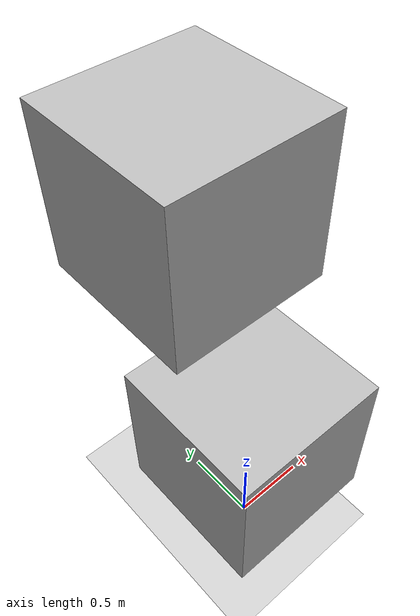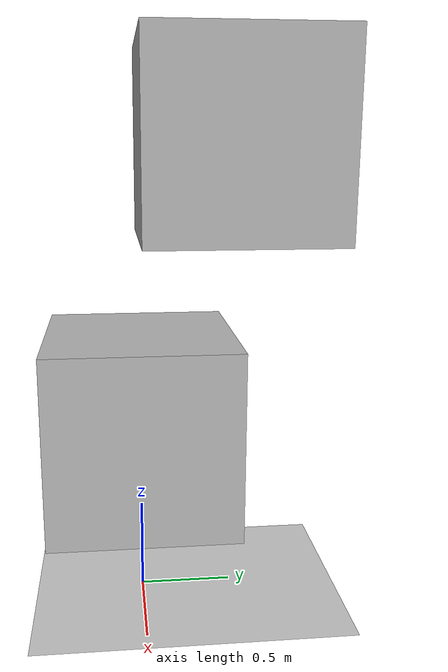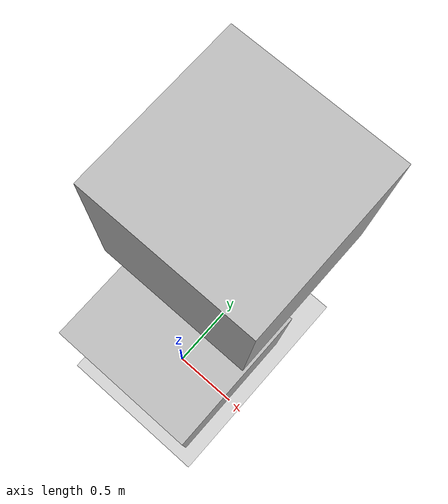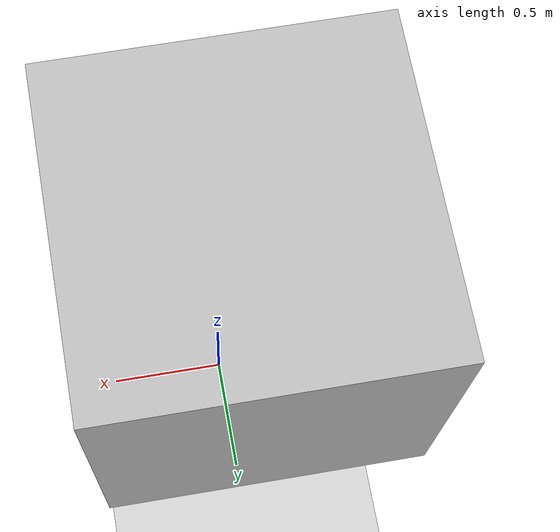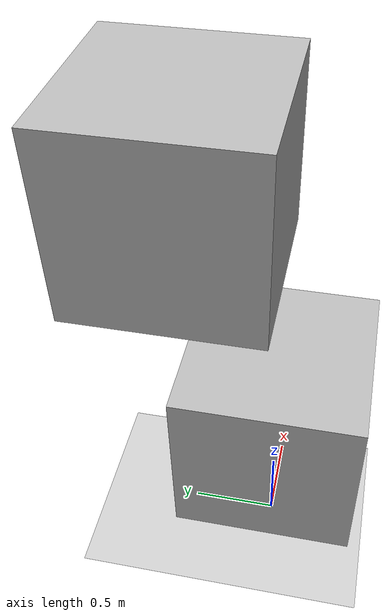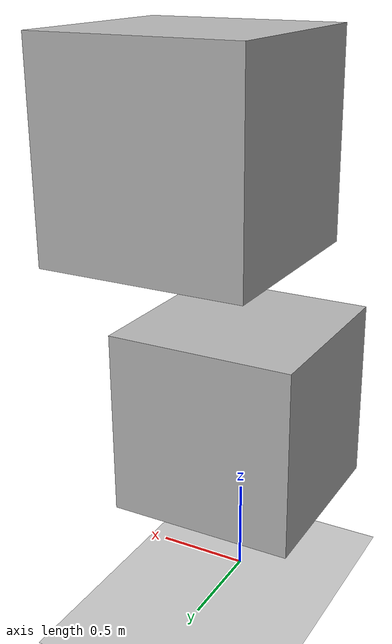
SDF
<?xml version="1.0" ?>
<sdf version="1.4">
  <world name="default">
    <include>
      <uri>model://ground_plane</uri>
    </include>
    <include>
      <uri>model://sun</uri>
    </include>
    <model name="joint14_model">
      <pose>0 0 0.5 0 0 0</pose>
      <link name="body1">
      <pose>0 0 0.5 0 0 0</pose>
        <collision name="geom">
          <geometry>
            <box>
              <size>1 1 1</size>
            </box>
          </geometry>
        </collision>
        <visual name="visual">
          <geometry>
            <box>
              <size>1 1 1</size>
            </box>
          </geometry>
        </visual>
      </link>
      <link name="body2">
      <pose>0 0.5 2 0 0 0</pose>
        <collision name="geom">
          <geometry>
            <box>
              <size>1 1 1</size>
            </box>
          </geometry>
        </collision>
        <visual name="visual">
          <geometry>
            <box>
              <size>1 1 1</size>
            </box>
          </geometry>
        </visual>
      </link>
      <joint type="revolute" name="joint14_revolute_joint">
        <pose>0 0 1 0 0 0</pose>
        <parent>
          <link_name>body2</link_name>
        </parent>
        <child>
          <link_name>body1</link_name>
        </child>
        <axis>
          <xyz>0 0 1</xyz>
        </axis>
      </joint>
    </model>
  </world>
</sdf>
